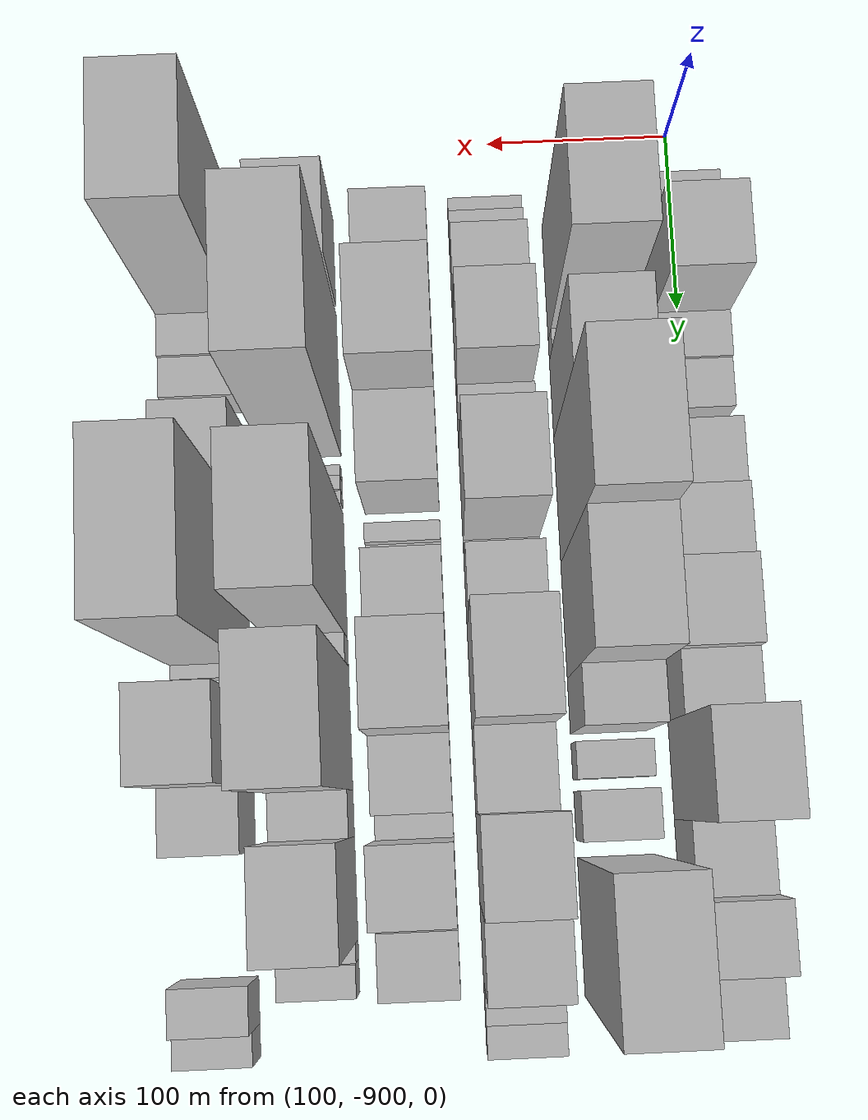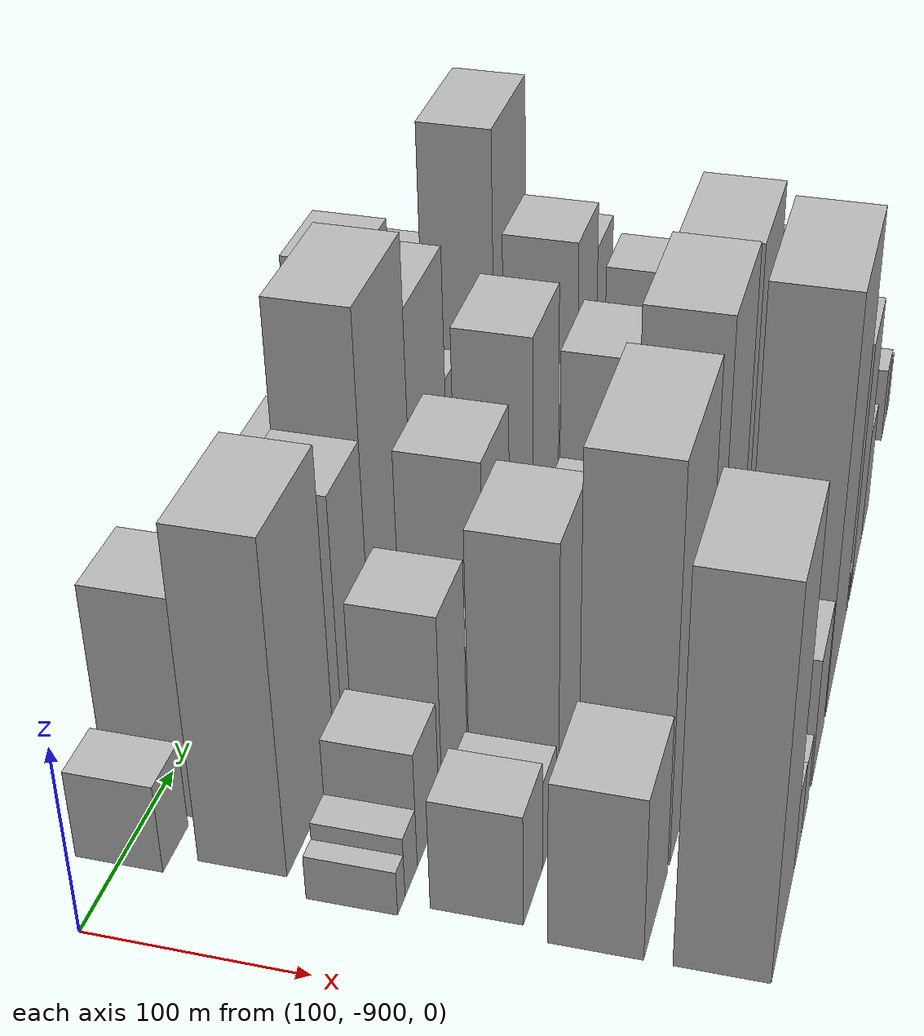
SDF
<sdf version="1.6">
 <world name="default">
  <model name="building_1">
   <static>1</static>
   <pose>100.0000 -845.6831 0 0.000000 0.000000 0.000000</pose>
   <link name="link">
    <pose>0 0 24.00 0 0 0</pose>
    <collision name="collision"><geometry><box><size>40.0000 28.6338 48.0000</size></box></geometry></collision>
    <visual name="visual">
     <cast_shadows>0</cast_shadows>
     <geometry><box><size>40.0000 28.6338 48.0000</size></box></geometry>
     <material>
      <script>
       <uri>model://HANNAS_wall/materials/scripts</uri>
       <uri>model://HANNAS_wall/materials/textures</uri>
       <name>vrc/HANNAS_wall</name>
      </script>
     </material>
    </visual>
   </link>
  </model>
  <model name="building_2">
   <static>1</static>
   <pose>100.0000 -804.2069 0 0.000000 0.000000 0.000000</pose>
   <link name="link">
    <pose>0 0 60.00 0 0 0</pose>
    <collision name="collision"><geometry><box><size>40.0000 42.3186 120.0000</size></box></geometry></collision>
    <visual name="visual">
     <cast_shadows>0</cast_shadows>
     <geometry><box><size>40.0000 42.3186 120.0000</size></box></geometry>
     <material>
      <script>
       <uri>model://HANNAS_wall/materials/scripts</uri>
       <uri>model://HANNAS_wall/materials/textures</uri>
       <name>vrc/HANNAS_wall</name>
      </script>
     </material>
    </visual>
   </link>
  </model>
  <model name="building_3">
   <static>1</static>
   <pose>100.0000 -770.7815 0 0.000000 0.000000 0.000000</pose>
   <link name="link">
    <pose>0 0 24.00 0 0 0</pose>
    <collision name="collision"><geometry><box><size>40.0000 24.5322 48.0000</size></box></geometry></collision>
    <visual name="visual">
     <cast_shadows>0</cast_shadows>
     <geometry><box><size>40.0000 24.5322 48.0000</size></box></geometry>
     <material>
      <script>
       <uri>model://HANNAS_wall/materials/scripts</uri>
       <uri>model://HANNAS_wall/materials/textures</uri>
       <name>vrc/HANNAS_wall</name>
      </script>
     </material>
    </visual>
   </link>
  </model>
  <model name="building_4">
   <static>1</static>
   <pose>100.0000 -745.4333 0 0.000000 0.000000 0.000000</pose>
   <link name="link">
    <pose>0 0 22.50 0 0 0</pose>
    <collision name="collision"><geometry><box><size>40.0000 26.1642 45.0000</size></box></geometry></collision>
    <visual name="visual">
     <cast_shadows>0</cast_shadows>
     <geometry><box><size>40.0000 26.1642 45.0000</size></box></geometry>
     <material>
      <script>
       <uri>model://HANNAS_wall/materials/scripts</uri>
       <uri>model://HANNAS_wall/materials/textures</uri>
       <name>vrc/HANNAS_wall</name>
      </script>
     </material>
    </visual>
   </link>
  </model>
  <model name="building_5">
   <static>1</static>
   <pose>100.0000 -726.0575 0 0.000000 0.000000 0.000000</pose>
   <link name="link">
    <pose>0 0 7.50 0 0 0</pose>
    <collision name="collision"><geometry><box><size>40.0000 6.5875 15.0000</size></box></geometry></collision>
    <visual name="visual">
     <cast_shadows>0</cast_shadows>
     <geometry><box><size>40.0000 6.5875 15.0000</size></box></geometry>
     <material>
      <script>
       <uri>model://HANNAS_wall/materials/scripts</uri>
       <uri>model://HANNAS_wall/materials/textures</uri>
       <name>vrc/HANNAS_wall</name>
      </script>
     </material>
    </visual>
   </link>
  </model>
  <model name="building_6">
   <static>1</static>
   <pose>100.0000 -705.3828 0 0.000000 0.000000 0.000000</pose>
   <link name="link">
    <pose>0 0 31.50 0 0 0</pose>
    <collision name="collision"><geometry><box><size>40.0000 34.7618 63.0000</size></box></geometry></collision>
    <visual name="visual">
     <cast_shadows>0</cast_shadows>
     <geometry><box><size>40.0000 34.7618 63.0000</size></box></geometry>
     <material>
      <script>
       <uri>model://HANNAS_wall/materials/scripts</uri>
       <uri>model://HANNAS_wall/materials/textures</uri>
       <name>vrc/HANNAS_wall</name>
      </script>
     </material>
    </visual>
   </link>
  </model>
  <model name="building_7">
   <static>1</static>
   <pose>100.0000 -669.4025 0 0.000000 0.000000 0.000000</pose>
   <link name="link">
    <pose>0 0 34.50 0 0 0</pose>
    <collision name="collision"><geometry><box><size>40.0000 37.1989 69.0000</size></box></geometry></collision>
    <visual name="visual">
     <cast_shadows>0</cast_shadows>
     <geometry><box><size>40.0000 37.1989 69.0000</size></box></geometry>
     <material>
      <script>
       <uri>model://HANNAS_wall/materials/scripts</uri>
       <uri>model://HANNAS_wall/materials/textures</uri>
       <name>vrc/HANNAS_wall</name>
      </script>
     </material>
    </visual>
   </link>
  </model>
  <model name="building_8">
   <static>1</static>
   <pose>100.0000 -628.4915 0 0.000000 0.000000 0.000000</pose>
   <link name="link">
    <pose>0 0 39.00 0 0 0</pose>
    <collision name="collision"><geometry><box><size>40.0000 44.6230 78.0000</size></box></geometry></collision>
    <visual name="visual">
     <cast_shadows>0</cast_shadows>
     <geometry><box><size>40.0000 44.6230 78.0000</size></box></geometry>
     <material>
      <script>
       <uri>model://HANNAS_wall/materials/scripts</uri>
       <uri>model://HANNAS_wall/materials/textures</uri>
       <name>vrc/HANNAS_wall</name>
      </script>
     </material>
    </visual>
   </link>
  </model>
  <model name="building_9">
   <static>1</static>
   <pose>100.0000 -589.9349 0 0.000000 0.000000 0.000000</pose>
   <link name="link">
    <pose>0 0 31.50 0 0 0</pose>
    <collision name="collision"><geometry><box><size>40.0000 32.4903 63.0000</size></box></geometry></collision>
    <visual name="visual">
     <cast_shadows>0</cast_shadows>
     <geometry><box><size>40.0000 32.4903 63.0000</size></box></geometry>
     <material>
      <script>
       <uri>model://HANNAS_wall/materials/scripts</uri>
       <uri>model://HANNAS_wall/materials/textures</uri>
       <name>vrc/HANNAS_wall</name>
      </script>
     </material>
    </visual>
   </link>
  </model>
  <model name="building_10">
   <static>1</static>
   <pose>100.0000 -548.0305 0 0.000000 0.000000 0.000000</pose>
   <link name="link">
    <pose>0 0 70.50 0 0 0</pose>
    <collision name="collision"><geometry><box><size>40.0000 51.3185 141.0000</size></box></geometry></collision>
    <visual name="visual">
     <cast_shadows>0</cast_shadows>
     <geometry><box><size>40.0000 51.3185 141.0000</size></box></geometry>
     <material>
      <script>
       <uri>model://HANNAS_wall/materials/scripts</uri>
       <uri>model://HANNAS_wall/materials/textures</uri>
       <name>vrc/HANNAS_wall</name>
      </script>
     </material>
    </visual>
   </link>
  </model>
  <model name="building_11">
   <static>1</static>
   <pose>100.0000 -503.8620 0 0.000000 0.000000 0.000000</pose>
   <link name="link">
    <pose>0 0 31.50 0 0 0</pose>
    <collision name="collision"><geometry><box><size>40.0000 37.0185 63.0000</size></box></geometry></collision>
    <visual name="visual">
     <cast_shadows>0</cast_shadows>
     <geometry><box><size>40.0000 37.0185 63.0000</size></box></geometry>
     <material>
      <script>
       <uri>model://HANNAS_wall/materials/scripts</uri>
       <uri>model://HANNAS_wall/materials/textures</uri>
       <name>vrc/HANNAS_wall</name>
      </script>
     </material>
    </visual>
   </link>
  </model>
  <model name="building_12">
   <static>1</static>
   <pose>100.0000 -467.8933 0 0.000000 0.000000 0.000000</pose>
   <link name="link">
    <pose>0 0 48.00 0 0 0</pose>
    <collision name="collision"><geometry><box><size>40.0000 34.9190 96.0000</size></box></geometry></collision>
    <visual name="visual">
     <cast_shadows>0</cast_shadows>
     <geometry><box><size>40.0000 34.9190 96.0000</size></box></geometry>
     <material>
      <script>
       <uri>model://HANNAS_wall/materials/scripts</uri>
       <uri>model://HANNAS_wall/materials/textures</uri>
       <name>vrc/HANNAS_wall</name>
      </script>
     </material>
    </visual>
   </link>
  </model>
  <model name="building_13">
   <static>1</static>
   <pose>100.0000 -434.0825 0 0.000000 0.000000 0.000000</pose>
   <link name="link">
    <pose>0 0 30.00 0 0 0</pose>
    <collision name="collision"><geometry><box><size>40.0000 32.7025 60.0000</size></box></geometry></collision>
    <visual name="visual">
     <cast_shadows>0</cast_shadows>
     <geometry><box><size>40.0000 32.7025 60.0000</size></box></geometry>
     <material>
      <script>
       <uri>model://HANNAS_wall/materials/scripts</uri>
       <uri>model://HANNAS_wall/materials/textures</uri>
       <name>vrc/HANNAS_wall</name>
      </script>
     </material>
    </visual>
   </link>
  </model>
  <model name="building_46">
   <static>1</static>
   <pose>152.0000 -817.2317 0 0.000000 0.000000 0.000000</pose>
   <link name="link">
    <pose>0 0 88.50 0 0 0</pose>
    <collision name="collision"><geometry><box><size>40.0000 65.5365 177.0000</size></box></geometry></collision>
    <visual name="visual">
     <cast_shadows>0</cast_shadows>
     <geometry><box><size>40.0000 65.5365 177.0000</size></box></geometry>
     <material>
      <script>
       <uri>model://HANNAS_wall/materials/scripts</uri>
       <uri>model://HANNAS_wall/materials/textures</uri>
       <name>vrc/HANNAS_wall</name>
      </script>
     </material>
    </visual>
   </link>
  </model>
  <model name="building_47">
   <static>1</static>
   <pose>152.0000 -778.7980 0 0.000000 0.000000 0.000000</pose>
   <link name="link">
    <pose>0 0 12.00 0 0 0</pose>
    <collision name="collision"><geometry><box><size>40.0000 11.3308 24.0000</size></box></geometry></collision>
    <visual name="visual">
     <cast_shadows>0</cast_shadows>
     <geometry><box><size>40.0000 11.3308 24.0000</size></box></geometry>
     <material>
      <script>
       <uri>model://HANNAS_wall/materials/scripts</uri>
       <uri>model://HANNAS_wall/materials/textures</uri>
       <name>vrc/HANNAS_wall</name>
      </script>
     </material>
    </visual>
   </link>
  </model>
  <model name="building_48">
   <static>1</static>
   <pose>152.0000 -751.4504 0 0.000000 0.000000 0.000000</pose>
   <link name="link">
    <pose>0 0 72.00 0 0 0</pose>
    <collision name="collision"><geometry><box><size>40.0000 43.3644 144.0000</size></box></geometry></collision>
    <visual name="visual">
     <cast_shadows>0</cast_shadows>
     <geometry><box><size>40.0000 43.3644 144.0000</size></box></geometry>
     <material>
      <script>
       <uri>model://HANNAS_wall/materials/scripts</uri>
       <uri>model://HANNAS_wall/materials/textures</uri>
       <name>vrc/HANNAS_wall</name>
      </script>
     </material>
    </visual>
   </link>
  </model>
  <model name="building_49">
   <static>1</static>
   <pose>152.0000 -695.3066 0 0.000000 0.000000 0.000000</pose>
   <link name="link">
    <pose>0 0 105.00 0 0 0</pose>
    <collision name="collision"><geometry><box><size>40.0000 68.9232 210.0000</size></box></geometry></collision>
    <visual name="visual">
     <cast_shadows>0</cast_shadows>
     <geometry><box><size>40.0000 68.9232 210.0000</size></box></geometry>
     <material>
      <script>
       <uri>model://HANNAS_wall/materials/scripts</uri>
       <uri>model://HANNAS_wall/materials/textures</uri>
       <name>vrc/HANNAS_wall</name>
      </script>
     </material>
    </visual>
   </link>
  </model>
  <model name="building_50">
   <static>1</static>
   <pose>152.0000 -629.6863 0 0.000000 0.000000 0.000000</pose>
   <link name="link">
    <pose>0 0 85.50 0 0 0</pose>
    <collision name="collision"><geometry><box><size>40.0000 62.3173 171.0000</size></box></geometry></collision>
    <visual name="visual">
     <cast_shadows>0</cast_shadows>
     <geometry><box><size>40.0000 62.3173 171.0000</size></box></geometry>
     <material>
      <script>
       <uri>model://HANNAS_wall/materials/scripts</uri>
       <uri>model://HANNAS_wall/materials/textures</uri>
       <name>vrc/HANNAS_wall</name>
      </script>
     </material>
    </visual>
   </link>
  </model>
  <model name="building_51">
   <static>1</static>
   <pose>152.0000 -583.8461 0 0.000000 0.000000 0.000000</pose>
   <link name="link">
    <pose>0 0 48.00 0 0 0</pose>
    <collision name="collision"><geometry><box><size>40.0000 29.3632 96.0000</size></box></geometry></collision>
    <visual name="visual">
     <cast_shadows>0</cast_shadows>
     <geometry><box><size>40.0000 29.3632 96.0000</size></box></geometry>
     <material>
      <script>
       <uri>model://HANNAS_wall/materials/scripts</uri>
       <uri>model://HANNAS_wall/materials/textures</uri>
       <name>vrc/HANNAS_wall</name>
      </script>
     </material>
    </visual>
   </link>
  </model>
  <model name="building_52">
   <static>1</static>
   <pose>152.0000 -554.6557 0 0.000000 0.000000 0.000000</pose>
   <link name="link">
    <pose>0 0 16.50 0 0 0</pose>
    <collision name="collision"><geometry><box><size>40.0000 19.0176 33.0000</size></box></geometry></collision>
    <visual name="visual">
     <cast_shadows>0</cast_shadows>
     <geometry><box><size>40.0000 19.0176 33.0000</size></box></geometry>
     <material>
      <script>
       <uri>model://HANNAS_wall/materials/scripts</uri>
       <uri>model://HANNAS_wall/materials/textures</uri>
       <name>vrc/HANNAS_wall</name>
      </script>
     </material>
    </visual>
   </link>
  </model>
  <model name="building_53">
   <static>1</static>
   <pose>152.0000 -526.5399 0 0.000000 0.000000 0.000000</pose>
   <link name="link">
    <pose>0 0 24.00 0 0 0</pose>
    <collision name="collision"><geometry><box><size>40.0000 25.2141 48.0000</size></box></geometry></collision>
    <visual name="visual">
     <cast_shadows>0</cast_shadows>
     <geometry><box><size>40.0000 25.2141 48.0000</size></box></geometry>
     <material>
      <script>
       <uri>model://HANNAS_wall/materials/scripts</uri>
       <uri>model://HANNAS_wall/materials/textures</uri>
       <name>vrc/HANNAS_wall</name>
      </script>
     </material>
    </visual>
   </link>
  </model>
  <model name="building_54">
   <static>1</static>
   <pose>152.0000 -469.6547 0 0.000000 0.000000 0.000000</pose>
   <link name="link">
    <pose>0 0 94.50 0 0 0</pose>
    <collision name="collision"><geometry><box><size>40.0000 70.5563 189.0000</size></box></geometry></collision>
    <visual name="visual">
     <cast_shadows>0</cast_shadows>
     <geometry><box><size>40.0000 70.5563 189.0000</size></box></geometry>
     <material>
      <script>
       <uri>model://HANNAS_wall/materials/scripts</uri>
       <uri>model://HANNAS_wall/materials/textures</uri>
       <name>vrc/HANNAS_wall</name>
      </script>
     </material>
    </visual>
   </link>
  </model>
  <model name="building_92">
   <static>1</static>
   <pose>204.0000 -854.7028 0 0.000000 0.000000 0.000000</pose>
   <link name="link">
    <pose>0 0 12.00 0 0 0</pose>
    <collision name="collision"><geometry><box><size>40.0000 10.5945 24.0000</size></box></geometry></collision>
    <visual name="visual">
     <cast_shadows>0</cast_shadows>
     <geometry><box><size>40.0000 10.5945 24.0000</size></box></geometry>
     <material>
      <script>
       <uri>model://HANNAS_wall/materials/scripts</uri>
       <uri>model://HANNAS_wall/materials/textures</uri>
       <name>vrc/HANNAS_wall</name>
      </script>
     </material>
    </visual>
   </link>
  </model>
  <model name="building_93">
   <static>1</static>
   <pose>204.0000 -840.3989 0 0.000000 0.000000 0.000000</pose>
   <link name="link">
    <pose>0 0 16.50 0 0 0</pose>
    <collision name="collision"><geometry><box><size>40.0000 18.0133 33.0000</size></box></geometry></collision>
    <visual name="visual">
     <cast_shadows>0</cast_shadows>
     <geometry><box><size>40.0000 18.0133 33.0000</size></box></geometry>
     <material>
      <script>
       <uri>model://HANNAS_wall/materials/scripts</uri>
       <uri>model://HANNAS_wall/materials/textures</uri>
       <name>vrc/HANNAS_wall</name>
      </script>
     </material>
    </visual>
   </link>
  </model>
  <model name="building_94">
   <static>1</static>
   <pose>204.0000 -814.5689 0 0.000000 0.000000 0.000000</pose>
   <link name="link">
    <pose>0 0 31.50 0 0 0</pose>
    <collision name="collision"><geometry><box><size>40.0000 33.6467 63.0000</size></box></geometry></collision>
    <visual name="visual">
     <cast_shadows>0</cast_shadows>
     <geometry><box><size>40.0000 33.6467 63.0000</size></box></geometry>
     <material>
      <script>
       <uri>model://HANNAS_wall/materials/scripts</uri>
       <uri>model://HANNAS_wall/materials/textures</uri>
       <name>vrc/HANNAS_wall</name>
      </script>
     </material>
    </visual>
   </link>
  </model>
  <model name="building_95">
   <static>1</static>
   <pose>204.0000 -772.2413 0 0.000000 0.000000 0.000000</pose>
   <link name="link">
    <pose>0 0 52.50 0 0 0</pose>
    <collision name="collision"><geometry><box><size>40.0000 41.0087 105.0000</size></box></geometry></collision>
    <visual name="visual">
     <cast_shadows>0</cast_shadows>
     <geometry><box><size>40.0000 41.0087 105.0000</size></box></geometry>
     <material>
      <script>
       <uri>model://HANNAS_wall/materials/scripts</uri>
       <uri>model://HANNAS_wall/materials/textures</uri>
       <name>vrc/HANNAS_wall</name>
      </script>
     </material>
    </visual>
   </link>
  </model>
  <model name="building_96">
   <static>1</static>
   <pose>204.0000 -734.2336 0 0.000000 0.000000 0.000000</pose>
   <link name="link">
    <pose>0 0 27.00 0 0 0</pose>
    <collision name="collision"><geometry><box><size>40.0000 27.0066 54.0000</size></box></geometry></collision>
    <visual name="visual">
     <cast_shadows>0</cast_shadows>
     <geometry><box><size>40.0000 27.0066 54.0000</size></box></geometry>
     <material>
      <script>
       <uri>model://HANNAS_wall/materials/scripts</uri>
       <uri>model://HANNAS_wall/materials/textures</uri>
       <name>vrc/HANNAS_wall</name>
      </script>
     </material>
    </visual>
   </link>
  </model>
  <model name="building_97">
   <static>1</static>
   <pose>204.0000 -696.5128 0 0.000000 0.000000 0.000000</pose>
   <link name="link">
    <pose>0 0 67.50 0 0 0</pose>
    <collision name="collision"><geometry><box><size>40.0000 48.4351 135.0000</size></box></geometry></collision>
    <visual name="visual">
     <cast_shadows>0</cast_shadows>
     <geometry><box><size>40.0000 48.4351 135.0000</size></box></geometry>
     <material>
      <script>
       <uri>model://HANNAS_wall/materials/scripts</uri>
       <uri>model://HANNAS_wall/materials/textures</uri>
       <name>vrc/HANNAS_wall</name>
      </script>
     </material>
    </visual>
   </link>
  </model>
  <model name="building_98">
   <static>1</static>
   <pose>204.0000 -667.6608 0 0.000000 0.000000 0.000000</pose>
   <link name="link">
    <pose>0 0 10.50 0 0 0</pose>
    <collision name="collision"><geometry><box><size>40.0000 9.2688 21.0000</size></box></geometry></collision>
    <visual name="visual">
     <cast_shadows>0</cast_shadows>
     <geometry><box><size>40.0000 9.2688 21.0000</size></box></geometry>
     <material>
      <script>
       <uri>model://HANNAS_wall/materials/scripts</uri>
       <uri>model://HANNAS_wall/materials/textures</uri>
       <name>vrc/HANNAS_wall</name>
      </script>
     </material>
    </visual>
   </link>
  </model>
  <model name="building_99">
   <static>1</static>
   <pose>204.0000 -645.0148 0 0.000000 0.000000 0.000000</pose>
   <link name="link">
    <pose>0 0 36.00 0 0 0</pose>
    <collision name="collision"><geometry><box><size>40.0000 36.0233 72.0000</size></box></geometry></collision>
    <visual name="visual">
     <cast_shadows>0</cast_shadows>
     <geometry><box><size>40.0000 36.0233 72.0000</size></box></geometry>
     <material>
      <script>
       <uri>model://HANNAS_wall/materials/scripts</uri>
       <uri>model://HANNAS_wall/materials/textures</uri>
       <name>vrc/HANNAS_wall</name>
      </script>
     </material>
    </visual>
   </link>
  </model>
  <model name="building_100">
   <static>1</static>
   <pose>204.0000 -599.8391 0 0.000000 0.000000 0.000000</pose>
   <link name="link">
    <pose>0 0 72.00 0 0 0</pose>
    <collision name="collision"><geometry><box><size>40.0000 54.3282 144.0000</size></box></geometry></collision>
    <visual name="visual">
     <cast_shadows>0</cast_shadows>
     <geometry><box><size>40.0000 54.3282 144.0000</size></box></geometry>
     <material>
      <script>
       <uri>model://HANNAS_wall/materials/scripts</uri>
       <uri>model://HANNAS_wall/materials/textures</uri>
       <name>vrc/HANNAS_wall</name>
      </script>
     </material>
    </visual>
   </link>
  </model>
  <model name="building_101">
   <static>1</static>
   <pose>204.0000 -551.5008 0 0.000000 0.000000 0.000000</pose>
   <link name="link">
    <pose>0 0 36.00 0 0 0</pose>
    <collision name="collision"><geometry><box><size>40.0000 42.3483 72.0000</size></box></geometry></collision>
    <visual name="visual">
     <cast_shadows>0</cast_shadows>
     <geometry><box><size>40.0000 42.3483 72.0000</size></box></geometry>
     <material>
      <script>
       <uri>model://HANNAS_wall/materials/scripts</uri>
       <uri>model://HANNAS_wall/materials/textures</uri>
       <name>vrc/HANNAS_wall</name>
      </script>
     </material>
    </visual>
   </link>
  </model>
  <model name="building_102">
   <static>1</static>
   <pose>204.0000 -507.3100 0 0.000000 0.000000 0.000000</pose>
   <link name="link">
    <pose>0 0 72.00 0 0 0</pose>
    <collision name="collision"><geometry><box><size>40.0000 46.0333 144.0000</size></box></geometry></collision>
    <visual name="visual">
     <cast_shadows>0</cast_shadows>
     <geometry><box><size>40.0000 46.0333 144.0000</size></box></geometry>
     <material>
      <script>
       <uri>model://HANNAS_wall/materials/scripts</uri>
       <uri>model://HANNAS_wall/materials/textures</uri>
       <name>vrc/HANNAS_wall</name>
      </script>
     </material>
    </visual>
   </link>
  </model>
  <model name="building_103">
   <static>1</static>
   <pose>204.0000 -464.7483 0 0.000000 0.000000 0.000000</pose>
   <link name="link">
    <pose>0 0 58.50 0 0 0</pose>
    <collision name="collision"><geometry><box><size>40.0000 39.0902 117.0000</size></box></geometry></collision>
    <visual name="visual">
     <cast_shadows>0</cast_shadows>
     <geometry><box><size>40.0000 39.0902 117.0000</size></box></geometry>
     <material>
      <script>
       <uri>model://HANNAS_wall/materials/scripts</uri>
       <uri>model://HANNAS_wall/materials/textures</uri>
       <name>vrc/HANNAS_wall</name>
      </script>
     </material>
    </visual>
   </link>
  </model>
  <model name="building_104">
   <static>1</static>
   <pose>204.0000 -435.9084 0 0.000000 0.000000 0.000000</pose>
   <link name="link">
    <pose>0 0 18.00 0 0 0</pose>
    <collision name="collision"><geometry><box><size>40.0000 18.5894 36.0000</size></box></geometry></collision>
    <visual name="visual">
     <cast_shadows>0</cast_shadows>
     <geometry><box><size>40.0000 18.5894 36.0000</size></box></geometry>
     <material>
      <script>
       <uri>model://HANNAS_wall/materials/scripts</uri>
       <uri>model://HANNAS_wall/materials/textures</uri>
       <name>vrc/HANNAS_wall</name>
      </script>
     </material>
    </visual>
   </link>
  </model>
  <model name="building_105">
   <static>1</static>
   <pose>204.0000 -418.3568 0 0.000000 0.000000 0.000000</pose>
   <link name="link">
    <pose>0 0 16.50 0 0 0</pose>
    <collision name="collision"><geometry><box><size>40.0000 16.5139 33.0000</size></box></geometry></collision>
    <visual name="visual">
     <cast_shadows>0</cast_shadows>
     <geometry><box><size>40.0000 16.5139 33.0000</size></box></geometry>
     <material>
      <script>
       <uri>model://HANNAS_wall/materials/scripts</uri>
       <uri>model://HANNAS_wall/materials/textures</uri>
       <name>vrc/HANNAS_wall</name>
      </script>
     </material>
    </visual>
   </link>
  </model>
  <model name="building_133">
   <static>1</static>
   <pose>256.0000 -836.5902 0 0.000000 0.000000 0.000000</pose>
   <link name="link">
    <pose>0 0 30.00 0 0 0</pose>
    <collision name="collision"><geometry><box><size>40.0000 32.8195 60.0000</size></box></geometry></collision>
    <visual name="visual">
     <cast_shadows>0</cast_shadows>
     <geometry><box><size>40.0000 32.8195 60.0000</size></box></geometry>
     <material>
      <script>
       <uri>model://HANNAS_wall/materials/scripts</uri>
       <uri>model://HANNAS_wall/materials/textures</uri>
       <name>vrc/HANNAS_wall</name>
      </script>
     </material>
    </visual>
   </link>
  </model>
  <model name="building_134">
   <static>1</static>
   <pose>256.0000 -807.7808 0 0.000000 0.000000 0.000000</pose>
   <link name="link">
    <pose>0 0 24.00 0 0 0</pose>
    <collision name="collision"><geometry><box><size>40.0000 24.7993 48.0000</size></box></geometry></collision>
    <visual name="visual">
     <cast_shadows>0</cast_shadows>
     <geometry><box><size>40.0000 24.7993 48.0000</size></box></geometry>
     <material>
      <script>
       <uri>model://HANNAS_wall/materials/scripts</uri>
       <uri>model://HANNAS_wall/materials/textures</uri>
       <name>vrc/HANNAS_wall</name>
      </script>
     </material>
    </visual>
   </link>
  </model>
  <model name="building_135">
   <static>1</static>
   <pose>256.0000 -764.3240 0 0.000000 0.000000 0.000000</pose>
   <link name="link">
    <pose>0 0 75.00 0 0 0</pose>
    <collision name="collision"><geometry><box><size>40.0000 52.1144 150.0000</size></box></geometry></collision>
    <visual name="visual">
     <cast_shadows>0</cast_shadows>
     <geometry><box><size>40.0000 52.1144 150.0000</size></box></geometry>
     <material>
      <script>
       <uri>model://HANNAS_wall/materials/scripts</uri>
       <uri>model://HANNAS_wall/materials/textures</uri>
       <name>vrc/HANNAS_wall</name>
      </script>
     </material>
    </visual>
   </link>
  </model>
  <model name="building_136">
   <static>1</static>
   <pose>256.0000 -715.2983 0 0.000000 0.000000 0.000000</pose>
   <link name="link">
    <pose>0 0 43.50 0 0 0</pose>
    <collision name="collision"><geometry><box><size>40.0000 45.9370 87.0000</size></box></geometry></collision>
    <visual name="visual">
     <cast_shadows>0</cast_shadows>
     <geometry><box><size>40.0000 45.9370 87.0000</size></box></geometry>
     <material>
      <script>
       <uri>model://HANNAS_wall/materials/scripts</uri>
       <uri>model://HANNAS_wall/materials/textures</uri>
       <name>vrc/HANNAS_wall</name>
      </script>
     </material>
    </visual>
   </link>
  </model>
  <model name="building_137">
   <static>1</static>
   <pose>256.0000 -678.1243 0 0.000000 0.000000 0.000000</pose>
   <link name="link">
    <pose>0 0 12.00 0 0 0</pose>
    <collision name="collision"><geometry><box><size>40.0000 10.4109 24.0000</size></box></geometry></collision>
    <visual name="visual">
     <cast_shadows>0</cast_shadows>
     <geometry><box><size>40.0000 10.4109 24.0000</size></box></geometry>
     <material>
      <script>
       <uri>model://HANNAS_wall/materials/scripts</uri>
       <uri>model://HANNAS_wall/materials/textures</uri>
       <name>vrc/HANNAS_wall</name>
      </script>
     </material>
    </visual>
   </link>
  </model>
  <model name="building_138">
   <static>1</static>
   <pose>256.0000 -669.3909 0 0.000000 0.000000 0.000000</pose>
   <link name="link">
    <pose>0 0 7.50 0 0 0</pose>
    <collision name="collision"><geometry><box><size>40.0000 7.0561 15.0000</size></box></geometry></collision>
    <visual name="visual">
     <cast_shadows>0</cast_shadows>
     <geometry><box><size>40.0000 7.0561 15.0000</size></box></geometry>
     <material>
      <script>
       <uri>model://HANNAS_wall/materials/scripts</uri>
       <uri>model://HANNAS_wall/materials/textures</uri>
       <name>vrc/HANNAS_wall</name>
      </script>
     </material>
    </visual>
   </link>
  </model>
  <model name="building_139">
   <static>1</static>
   <pose>256.0000 -641.2112 0 0.000000 0.000000 0.000000</pose>
   <link name="link">
    <pose>0 0 37.50 0 0 0</pose>
    <collision name="collision"><geometry><box><size>40.0000 41.3033 75.0000</size></box></geometry></collision>
    <visual name="visual">
     <cast_shadows>0</cast_shadows>
     <geometry><box><size>40.0000 41.3033 75.0000</size></box></geometry>
     <material>
      <script>
       <uri>model://HANNAS_wall/materials/scripts</uri>
       <uri>model://HANNAS_wall/materials/textures</uri>
       <name>vrc/HANNAS_wall</name>
      </script>
     </material>
    </visual>
   </link>
  </model>
  <model name="building_140">
   <static>1</static>
   <pose>256.0000 -595.4396 0 0.000000 0.000000 0.000000</pose>
   <link name="link">
    <pose>0 0 67.50 0 0 0</pose>
    <collision name="collision"><geometry><box><size>40.0000 50.2399 135.0000</size></box></geometry></collision>
    <visual name="visual">
     <cast_shadows>0</cast_shadows>
     <geometry><box><size>40.0000 50.2399 135.0000</size></box></geometry>
     <material>
      <script>
       <uri>model://HANNAS_wall/materials/scripts</uri>
       <uri>model://HANNAS_wall/materials/textures</uri>
       <name>vrc/HANNAS_wall</name>
      </script>
     </material>
    </visual>
   </link>
  </model>
  <model name="building_141">
   <static>1</static>
   <pose>256.0000 -550.9892 0 0.000000 0.000000 0.000000</pose>
   <link name="link">
    <pose>0 0 33.00 0 0 0</pose>
    <collision name="collision"><geometry><box><size>40.0000 38.6608 66.0000</size></box></geometry></collision>
    <visual name="visual">
     <cast_shadows>0</cast_shadows>
     <geometry><box><size>40.0000 38.6608 66.0000</size></box></geometry>
     <material>
      <script>
       <uri>model://HANNAS_wall/materials/scripts</uri>
       <uri>model://HANNAS_wall/materials/textures</uri>
       <name>vrc/HANNAS_wall</name>
      </script>
     </material>
    </visual>
   </link>
  </model>
  <model name="building_142">
   <static>1</static>
   <pose>256.0000 -525.3052 0 0.000000 0.000000 0.000000</pose>
   <link name="link">
    <pose>0 0 13.50 0 0 0</pose>
    <collision name="collision"><geometry><box><size>40.0000 12.7072 27.0000</size></box></geometry></collision>
    <visual name="visual">
     <cast_shadows>0</cast_shadows>
     <geometry><box><size>40.0000 12.7072 27.0000</size></box></geometry>
     <material>
      <script>
       <uri>model://HANNAS_wall/materials/scripts</uri>
       <uri>model://HANNAS_wall/materials/textures</uri>
       <name>vrc/HANNAS_wall</name>
      </script>
     </material>
    </visual>
   </link>
  </model>
  <model name="building_143">
   <static>1</static>
   <pose>256.0000 -500.0141 0 0.000000 0.000000 0.000000</pose>
   <link name="link">
    <pose>0 0 63.00 0 0 0</pose>
    <collision name="collision"><geometry><box><size>40.0000 37.8748 126.0000</size></box></geometry></collision>
    <visual name="visual">
     <cast_shadows>0</cast_shadows>
     <geometry><box><size>40.0000 37.8748 126.0000</size></box></geometry>
     <material>
      <script>
       <uri>model://HANNAS_wall/materials/scripts</uri>
       <uri>model://HANNAS_wall/materials/textures</uri>
       <name>vrc/HANNAS_wall</name>
      </script>
     </material>
    </visual>
   </link>
  </model>
  <model name="building_144">
   <static>1</static>
   <pose>256.0000 -458.7169 0 0.000000 0.000000 0.000000</pose>
   <link name="link">
    <pose>0 0 28.50 0 0 0</pose>
    <collision name="collision"><geometry><box><size>40.0000 32.7196 57.0000</size></box></geometry></collision>
    <visual name="visual">
     <cast_shadows>0</cast_shadows>
     <geometry><box><size>40.0000 32.7196 57.0000</size></box></geometry>
     <material>
      <script>
       <uri>model://HANNAS_wall/materials/scripts</uri>
       <uri>model://HANNAS_wall/materials/textures</uri>
       <name>vrc/HANNAS_wall</name>
      </script>
     </material>
    </visual>
   </link>
  </model>
  <model name="building_185">
   <static>1</static>
   <pose>308.0000 -834.7288 0 0.000000 0.000000 0.000000</pose>
   <link name="link">
    <pose>0 0 43.50 0 0 0</pose>
    <collision name="collision"><geometry><box><size>40.0000 50.5424 87.0000</size></box></geometry></collision>
    <visual name="visual">
     <cast_shadows>0</cast_shadows>
     <geometry><box><size>40.0000 50.5424 87.0000</size></box></geometry>
     <material>
      <script>
       <uri>model://HANNAS_wall/materials/scripts</uri>
       <uri>model://HANNAS_wall/materials/textures</uri>
       <name>vrc/HANNAS_wall</name>
      </script>
     </material>
    </visual>
   </link>
  </model>
  <model name="building_186">
   <static>1</static>
   <pose>308.0000 -764.8006 0 0.000000 0.000000 0.000000</pose>
   <link name="link">
    <pose>0 0 103.50 0 0 0</pose>
    <collision name="collision"><geometry><box><size>40.0000 79.3139 207.0000</size></box></geometry></collision>
    <visual name="visual">
     <cast_shadows>0</cast_shadows>
     <geometry><box><size>40.0000 79.3139 207.0000</size></box></geometry>
     <material>
      <script>
       <uri>model://HANNAS_wall/materials/scripts</uri>
       <uri>model://HANNAS_wall/materials/textures</uri>
       <name>vrc/HANNAS_wall</name>
      </script>
     </material>
    </visual>
   </link>
  </model>
  <model name="building_187">
   <static>1</static>
   <pose>308.0000 -713.9949 0 0.000000 0.000000 0.000000</pose>
   <link name="link">
    <pose>0 0 7.50 0 0 0</pose>
    <collision name="collision"><geometry><box><size>40.0000 6.2975 15.0000</size></box></geometry></collision>
    <visual name="visual">
     <cast_shadows>0</cast_shadows>
     <geometry><box><size>40.0000 6.2975 15.0000</size></box></geometry>
     <material>
      <script>
       <uri>model://HANNAS_wall/materials/scripts</uri>
       <uri>model://HANNAS_wall/materials/textures</uri>
       <name>vrc/HANNAS_wall</name>
      </script>
     </material>
    </visual>
   </link>
  </model>
  <model name="building_188">
   <static>1</static>
   <pose>308.0000 -706.9867 0 0.000000 0.000000 0.000000</pose>
   <link name="link">
    <pose>0 0 9.00 0 0 0</pose>
    <collision name="collision"><geometry><box><size>40.0000 7.7189 18.0000</size></box></geometry></collision>
    <visual name="visual">
     <cast_shadows>0</cast_shadows>
     <geometry><box><size>40.0000 7.7189 18.0000</size></box></geometry>
     <material>
      <script>
       <uri>model://HANNAS_wall/materials/scripts</uri>
       <uri>model://HANNAS_wall/materials/textures</uri>
       <name>vrc/HANNAS_wall</name>
      </script>
     </material>
    </visual>
   </link>
  </model>
  <model name="building_189">
   <static>1</static>
   <pose>308.0000 -699.5756 0 0.000000 0.000000 0.000000</pose>
   <link name="link">
    <pose>0 0 7.50 0 0 0</pose>
    <collision name="collision"><geometry><box><size>40.0000 7.1034 15.0000</size></box></geometry></collision>
    <visual name="visual">
     <cast_shadows>0</cast_shadows>
     <geometry><box><size>40.0000 7.1034 15.0000</size></box></geometry>
     <material>
      <script>
       <uri>model://HANNAS_wall/materials/scripts</uri>
       <uri>model://HANNAS_wall/materials/textures</uri>
       <name>vrc/HANNAS_wall</name>
      </script>
     </material>
    </visual>
   </link>
  </model>
  <model name="building_190">
   <static>1</static>
   <pose>308.0000 -659.3480 0 0.000000 0.000000 0.000000</pose>
   <link name="link">
    <pose>0 0 103.50 0 0 0</pose>
    <collision name="collision"><geometry><box><size>40.0000 67.3518 207.0000</size></box></geometry></collision>
    <visual name="visual">
     <cast_shadows>0</cast_shadows>
     <geometry><box><size>40.0000 67.3518 207.0000</size></box></geometry>
     <material>
      <script>
       <uri>model://HANNAS_wall/materials/scripts</uri>
       <uri>model://HANNAS_wall/materials/textures</uri>
       <name>vrc/HANNAS_wall</name>
      </script>
     </material>
    </visual>
   </link>
  </model>
  <model name="building_191">
   <static>1</static>
   <pose>308.0000 -618.1017 0 0.000000 0.000000 0.000000</pose>
   <link name="link">
    <pose>0 0 15.00 0 0 0</pose>
    <collision name="collision"><geometry><box><size>40.0000 15.1408 30.0000</size></box></geometry></collision>
    <visual name="visual">
     <cast_shadows>0</cast_shadows>
     <geometry><box><size>40.0000 15.1408 30.0000</size></box></geometry>
     <material>
      <script>
       <uri>model://HANNAS_wall/materials/scripts</uri>
       <uri>model://HANNAS_wall/materials/textures</uri>
       <name>vrc/HANNAS_wall</name>
      </script>
     </material>
    </visual>
   </link>
  </model>
  <model name="building_192">
   <static>1</static>
   <pose>308.0000 -577.8447 0 0.000000 0.000000 0.000000</pose>
   <link name="link">
    <pose>0 0 99.00 0 0 0</pose>
    <collision name="collision"><geometry><box><size>40.0000 65.3731 198.0000</size></box></geometry></collision>
    <visual name="visual">
     <cast_shadows>0</cast_shadows>
     <geometry><box><size>40.0000 65.3731 198.0000</size></box></geometry>
     <material>
      <script>
       <uri>model://HANNAS_wall/materials/scripts</uri>
       <uri>model://HANNAS_wall/materials/textures</uri>
       <name>vrc/HANNAS_wall</name>
      </script>
     </material>
    </visual>
   </link>
  </model>
  <model name="building_193">
   <static>1</static>
   <pose>308.0000 -533.1354 0 0.000000 0.000000 0.000000</pose>
   <link name="link">
    <pose>0 0 24.00 0 0 0</pose>
    <collision name="collision"><geometry><box><size>40.0000 24.0455 48.0000</size></box></geometry></collision>
    <visual name="visual">
     <cast_shadows>0</cast_shadows>
     <geometry><box><size>40.0000 24.0455 48.0000</size></box></geometry>
     <material>
      <script>
       <uri>model://HANNAS_wall/materials/scripts</uri>
       <uri>model://HANNAS_wall/materials/textures</uri>
       <name>vrc/HANNAS_wall</name>
      </script>
     </material>
    </visual>
   </link>
  </model>
  <model name="building_194">
   <static>1</static>
   <pose>308.0000 -494.6844 0 0.000000 0.000000 0.000000</pose>
   <link name="link">
    <pose>0 0 67.50 0 0 0</pose>
    <collision name="collision"><geometry><box><size>40.0000 52.8565 135.0000</size></box></geometry></collision>
    <visual name="visual">
     <cast_shadows>0</cast_shadows>
     <geometry><box><size>40.0000 52.8565 135.0000</size></box></geometry>
     <material>
      <script>
       <uri>model://HANNAS_wall/materials/scripts</uri>
       <uri>model://HANNAS_wall/materials/textures</uri>
       <name>vrc/HANNAS_wall</name>
      </script>
     </material>
    </visual>
   </link>
  </model>
  <model name="building_195">
   <static>1</static>
   <pose>308.0000 -463.4058 0 0.000000 0.000000 0.000000</pose>
   <link name="link">
    <pose>0 0 12.00 0 0 0</pose>
    <collision name="collision"><geometry><box><size>40.0000 9.7008 24.0000</size></box></geometry></collision>
    <visual name="visual">
     <cast_shadows>0</cast_shadows>
     <geometry><box><size>40.0000 9.7008 24.0000</size></box></geometry>
     <material>
      <script>
       <uri>model://HANNAS_wall/materials/scripts</uri>
       <uri>model://HANNAS_wall/materials/textures</uri>
       <name>vrc/HANNAS_wall</name>
      </script>
     </material>
    </visual>
   </link>
  </model>
  <model name="building_196">
   <static>1</static>
   <pose>308.0000 -450.2427 0 0.000000 0.000000 0.000000</pose>
   <link name="link">
    <pose>0 0 15.00 0 0 0</pose>
    <collision name="collision"><geometry><box><size>40.0000 16.6254 30.0000</size></box></geometry></collision>
    <visual name="visual">
     <cast_shadows>0</cast_shadows>
     <geometry><box><size>40.0000 16.6254 30.0000</size></box></geometry>
     <material>
      <script>
       <uri>model://HANNAS_wall/materials/scripts</uri>
       <uri>model://HANNAS_wall/materials/textures</uri>
       <name>vrc/HANNAS_wall</name>
      </script>
     </material>
    </visual>
   </link>
  </model>
  <model name="building_231">
   <static>1</static>
   <pose>360.0000 -827.9781 0 0.000000 0.000000 0.000000</pose>
   <link name="link">
    <pose>0 0 100.50 0 0 0</pose>
    <collision name="collision"><geometry><box><size>40.0000 64.0439 201.0000</size></box></geometry></collision>
    <visual name="visual">
     <cast_shadows>0</cast_shadows>
     <geometry><box><size>40.0000 64.0439 201.0000</size></box></geometry>
     <material>
      <script>
       <uri>model://HANNAS_wall/materials/scripts</uri>
       <uri>model://HANNAS_wall/materials/textures</uri>
       <name>vrc/HANNAS_wall</name>
      </script>
     </material>
    </visual>
   </link>
  </model>
  <model name="building_232">
   <static>1</static>
   <pose>360.0000 -784.6877 0 0.000000 0.000000 0.000000</pose>
   <link name="link">
    <pose>0 0 21.00 0 0 0</pose>
    <collision name="collision"><geometry><box><size>40.0000 22.5368 42.0000</size></box></geometry></collision>
    <visual name="visual">
     <cast_shadows>0</cast_shadows>
     <geometry><box><size>40.0000 22.5368 42.0000</size></box></geometry>
     <material>
      <script>
       <uri>model://HANNAS_wall/materials/scripts</uri>
       <uri>model://HANNAS_wall/materials/textures</uri>
       <name>vrc/HANNAS_wall</name>
      </script>
     </material>
    </visual>
   </link>
  </model>
  <model name="building_233">
   <static>1</static>
   <pose>360.0000 -762.6487 0 0.000000 0.000000 0.000000</pose>
   <link name="link">
    <pose>0 0 19.50 0 0 0</pose>
    <collision name="collision"><geometry><box><size>40.0000 21.5413 39.0000</size></box></geometry></collision>
    <visual name="visual">
     <cast_shadows>0</cast_shadows>
     <geometry><box><size>40.0000 21.5413 39.0000</size></box></geometry>
     <material>
      <script>
       <uri>model://HANNAS_wall/materials/scripts</uri>
       <uri>model://HANNAS_wall/materials/textures</uri>
       <name>vrc/HANNAS_wall</name>
      </script>
     </material>
    </visual>
   </link>
  </model>
  <model name="building_234">
   <static>1</static>
   <pose>360.0000 -720.4749 0 0.000000 0.000000 0.000000</pose>
   <link name="link">
    <pose>0 0 36.00 0 0 0</pose>
    <collision name="collision"><geometry><box><size>40.0000 42.8063 72.0000</size></box></geometry></collision>
    <visual name="visual">
     <cast_shadows>0</cast_shadows>
     <geometry><box><size>40.0000 42.8063 72.0000</size></box></geometry>
     <material>
      <script>
       <uri>model://HANNAS_wall/materials/scripts</uri>
       <uri>model://HANNAS_wall/materials/textures</uri>
       <name>vrc/HANNAS_wall</name>
      </script>
     </material>
    </visual>
   </link>
  </model>
  <model name="building_235">
   <static>1</static>
   <pose>360.0000 -653.2944 0 0.000000 0.000000 0.000000</pose>
   <link name="link">
    <pose>0 0 112.50 0 0 0</pose>
    <collision name="collision"><geometry><box><size>40.0000 79.5546 225.0000</size></box></geometry></collision>
    <visual name="visual">
     <cast_shadows>0</cast_shadows>
     <geometry><box><size>40.0000 79.5546 225.0000</size></box></geometry>
     <material>
      <script>
       <uri>model://HANNAS_wall/materials/scripts</uri>
       <uri>model://HANNAS_wall/materials/textures</uri>
       <name>vrc/HANNAS_wall</name>
      </script>
     </material>
    </visual>
   </link>
  </model>
  <model name="building_236">
   <static>1</static>
   <pose>360.0000 -609.7808 0 0.000000 0.000000 0.000000</pose>
   <link name="link">
    <pose>0 0 9.00 0 0 0</pose>
    <collision name="collision"><geometry><box><size>40.0000 7.4725 18.0000</size></box></geometry></collision>
    <visual name="visual">
     <cast_shadows>0</cast_shadows>
     <geometry><box><size>40.0000 7.4725 18.0000</size></box></geometry>
     <material>
      <script>
       <uri>model://HANNAS_wall/materials/scripts</uri>
       <uri>model://HANNAS_wall/materials/textures</uri>
       <name>vrc/HANNAS_wall</name>
      </script>
     </material>
    </visual>
   </link>
  </model>
  <model name="building_237">
   <static>1</static>
   <pose>360.0000 -599.0339 0 0.000000 0.000000 0.000000</pose>
   <link name="link">
    <pose>0 0 9.00 0 0 0</pose>
    <collision name="collision"><geometry><box><size>40.0000 8.0213 18.0000</size></box></geometry></collision>
    <visual name="visual">
     <cast_shadows>0</cast_shadows>
     <geometry><box><size>40.0000 8.0213 18.0000</size></box></geometry>
     <material>
      <script>
       <uri>model://HANNAS_wall/materials/scripts</uri>
       <uri>model://HANNAS_wall/materials/textures</uri>
       <name>vrc/HANNAS_wall</name>
      </script>
     </material>
    </visual>
   </link>
  </model>
  <model name="building_238">
   <static>1</static>
   <pose>360.0000 -572.2987 0 0.000000 0.000000 0.000000</pose>
   <link name="link">
    <pose>0 0 72.00 0 0 0</pose>
    <collision name="collision"><geometry><box><size>40.0000 45.4492 144.0000</size></box></geometry></collision>
    <visual name="visual">
     <cast_shadows>0</cast_shadows>
     <geometry><box><size>40.0000 45.4492 144.0000</size></box></geometry>
     <material>
      <script>
       <uri>model://HANNAS_wall/materials/scripts</uri>
       <uri>model://HANNAS_wall/materials/textures</uri>
       <name>vrc/HANNAS_wall</name>
      </script>
     </material>
    </visual>
   </link>
  </model>
  <model name="building_239">
   <static>1</static>
   <pose>360.0000 -532.8726 0 0.000000 0.000000 0.000000</pose>
   <link name="link">
    <pose>0 0 31.50 0 0 0</pose>
    <collision name="collision"><geometry><box><size>40.0000 33.4030 63.0000</size></box></geometry></collision>
    <visual name="visual">
     <cast_shadows>0</cast_shadows>
     <geometry><box><size>40.0000 33.4030 63.0000</size></box></geometry>
     <material>
      <script>
       <uri>model://HANNAS_wall/materials/scripts</uri>
       <uri>model://HANNAS_wall/materials/textures</uri>
       <name>vrc/HANNAS_wall</name>
      </script>
     </material>
    </visual>
   </link>
  </model>
  <model name="building_240">
   <static>1</static>
   <pose>360.0000 -440.3239 0 0.000000 0.000000 0.000000</pose>
   <link name="link">
    <pose>0 0 22.50 0 0 0</pose>
    <collision name="collision"><geometry><box><size>40.0000 23.8981 45.0000</size></box></geometry></collision>
    <visual name="visual">
     <cast_shadows>0</cast_shadows>
     <geometry><box><size>40.0000 23.8981 45.0000</size></box></geometry>
     <material>
      <script>
       <uri>model://HANNAS_wall/materials/scripts</uri>
       <uri>model://HANNAS_wall/materials/textures</uri>
       <name>vrc/HANNAS_wall</name>
      </script>
     </material>
    </visual>
   </link>
  </model>
  <model name="building_241">
   <static>1</static>
   <pose>360.0000 -420.1004 0 0.000000 0.000000 0.000000</pose>
   <link name="link">
    <pose>0 0 16.50 0 0 0</pose>
    <collision name="collision"><geometry><box><size>40.0000 16.5488 33.0000</size></box></geometry></collision>
    <visual name="visual">
     <cast_shadows>0</cast_shadows>
     <geometry><box><size>40.0000 16.5488 33.0000</size></box></geometry>
     <material>
      <script>
       <uri>model://HANNAS_wall/materials/scripts</uri>
       <uri>model://HANNAS_wall/materials/textures</uri>
       <name>vrc/HANNAS_wall</name>
      </script>
     </material>
    </visual>
   </link>
  </model>
 </world>
</sdf>
